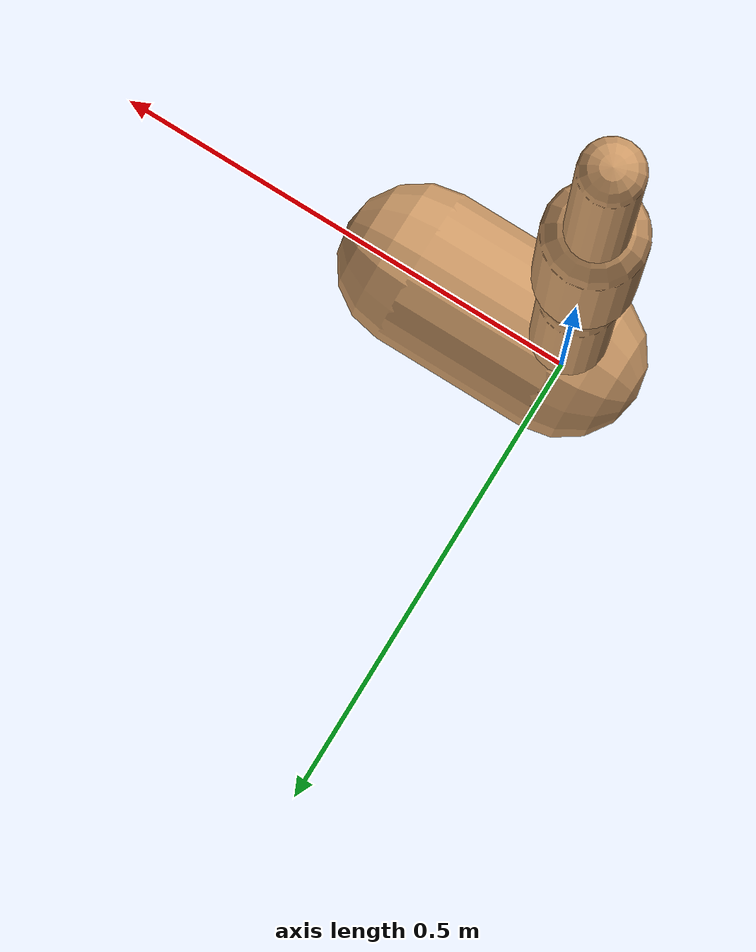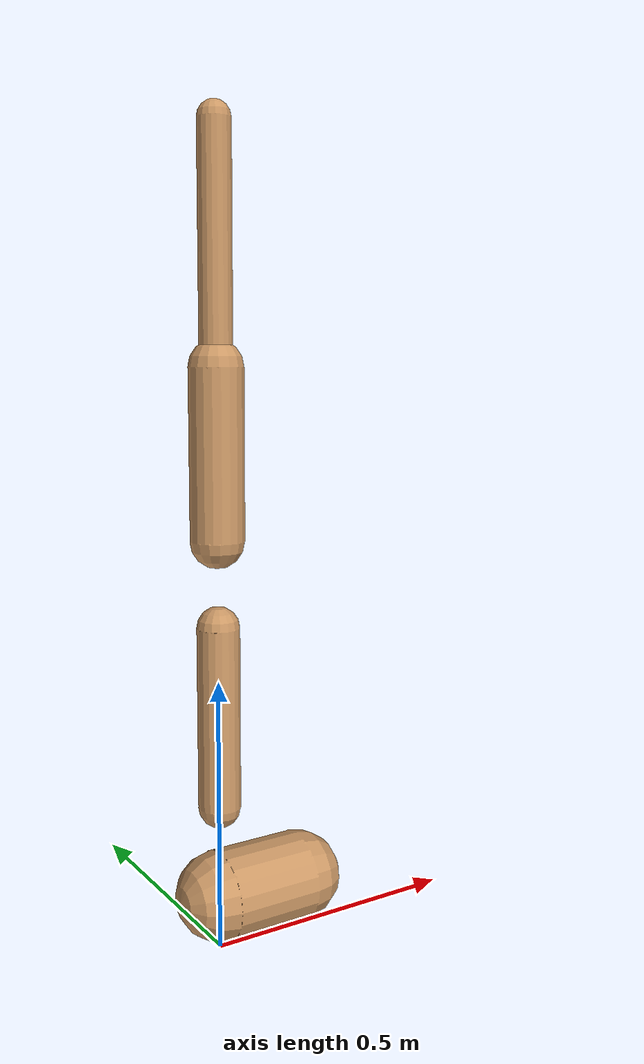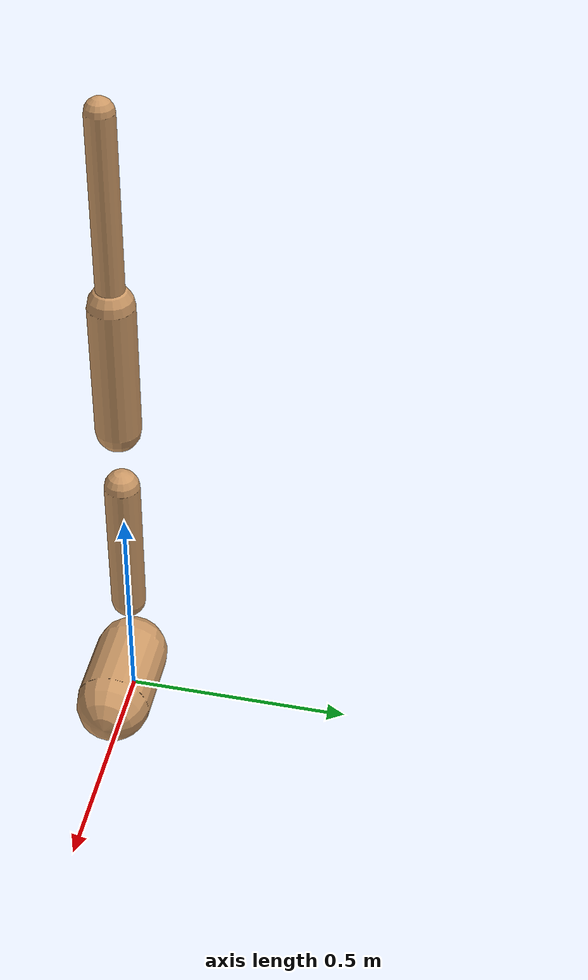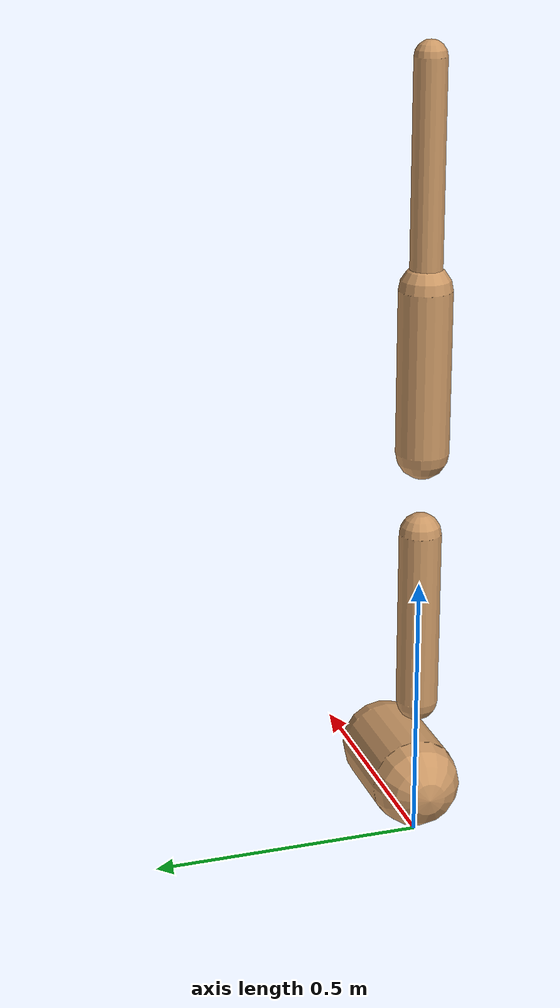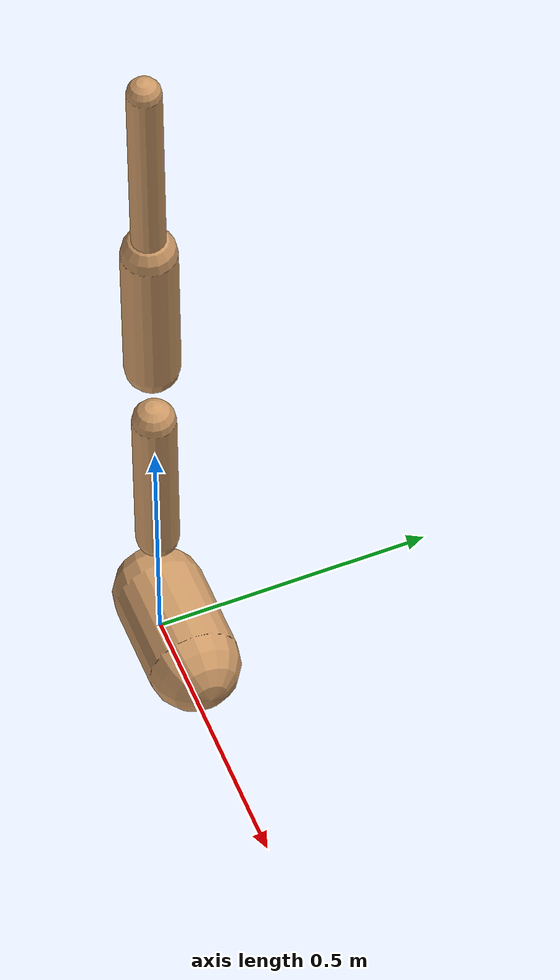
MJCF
<mujoco model="walker2d">
  <compiler angle="degree" coordinate="global" inertiafromgeom="true" />
  <default>
    <joint armature="0.01" damping=".1" limited="true" />
    <geom conaffinity="0" condim="3" contype="1" density="1000" friction="0.8 .1 .1" rgba="0.8 0.6 .4 1" />
  </default>
  <option integrator="RK4" timestep="0.002" />
  <worldbody>

    <body name="torso" pos="0 0 -0.3245649067632812">
      <joint armature="0" axis="1 0 0" damping="0" limited="false" name="ignorex" pos="0 0 0" stiffness="0" type="slide" />
      <joint armature="0" axis="0 0 1" damping="0" limited="false" name="ignorez" pos="0 0 0" ref="1.25" stiffness="0" type="slide" />
      <joint armature="0" axis="0 1 0" damping="0" limited="false" name="ignorey" pos="0 0 0" stiffness="0" type="hinge" />
      <geom fromto="0 0 1.45 0 0 1.05" name="torso_geom" size="0.028997067532029408" type="capsule" />
      <body name="thigh">
        <joint axis="0 -1 0" name="thigh_joint" pos="0 0 1.05" range="-150 0" type="hinge" />
        <geom fromto="0.0 0.0 1.05 0.0 0.0 0.7537412716247122" name="thigh_geom" size="0.04790681125076244" type="capsule" />
        <body name="leg" pos="0.0 0.0 0.15374127162471218">
          <joint axis="0 -1 0" name="leg_joint" pos="0 0 0.6" range="-150 0" type="hinge" />
          <geom fromto="0.0 0.0 0.6 0.0 0.0 0.27082363513856905" name="leg_geom" size="0.038325449000609954" type="capsule" />
          <body name="foot" pos="0.0 0.0 0.17082363513856905">
            <joint axis="0 -1 0" name="foot_joint" pos="0 0 0.1" range="-45 45" type="hinge" />
            <geom fromto="0.0 0.0 0.1 0.16371794432653472 0.0 0.1" name="foot_geom" size="0.0823772443274537" type="capsule" />
          </body>
        </body>
      </body>

      <body name="thigh_left">
        <joint axis="0 -1 0" name="thigh_left_joint" pos="0 0 1.05" range="-150 0" type="hinge" />
        <geom fromto="0.0 0.0 1.05 0.0 0.0 0.7537412716247122" name="thigh_left_geom" rgba=".7 .3 .6 1" size="0.04790681125076244" type="capsule" />
        <body name="leg_left" pos="0.0 0.0 0.15374127162471218">
          <joint axis="0 -1 0" name="leg_left_joint" pos="0 0 0.6" range="-150 0" type="hinge" />
          <geom fromto="0.0 0.0 0.6 0.0 0.0 0.27082363513856905" name="leg_left_geom" rgba=".7 .3 .6 1" size="0.038325449000609954" type="capsule" />
          <body name="foot_left" pos="0.0 0.0 0.17082363513856905">
            <joint axis="0 -1 0" name="foot_left_joint" pos="0 0 0.1" range="-45 45" type="hinge" />
            <geom fromto="0.0 0.0 0.1 0.16371794432653472 0.0 0.1" name="foot_left_geom" rgba=".7 .3 .6 1" size="0.0823772443274537" type="capsule" />
          </body>
        </body>
      </body>
    </body>
  </worldbody>
  <actuator>

    <motor ctrllimited="true" ctrlrange="-1.0 1.0" gear="100" joint="thigh_joint" />
    <motor ctrllimited="true" ctrlrange="-1.0 1.0" gear="100" joint="leg_joint" />
    <motor ctrllimited="true" ctrlrange="-1.0 1.0" gear="100" joint="foot_joint" />
    <motor ctrllimited="true" ctrlrange="-1.0 1.0" gear="100" joint="thigh_left_joint" />
    <motor ctrllimited="true" ctrlrange="-1.0 1.0" gear="100" joint="leg_left_joint" />
    <motor ctrllimited="true" ctrlrange="-1.0 1.0" gear="100" joint="foot_left_joint" />

  </actuator>
</mujoco>
